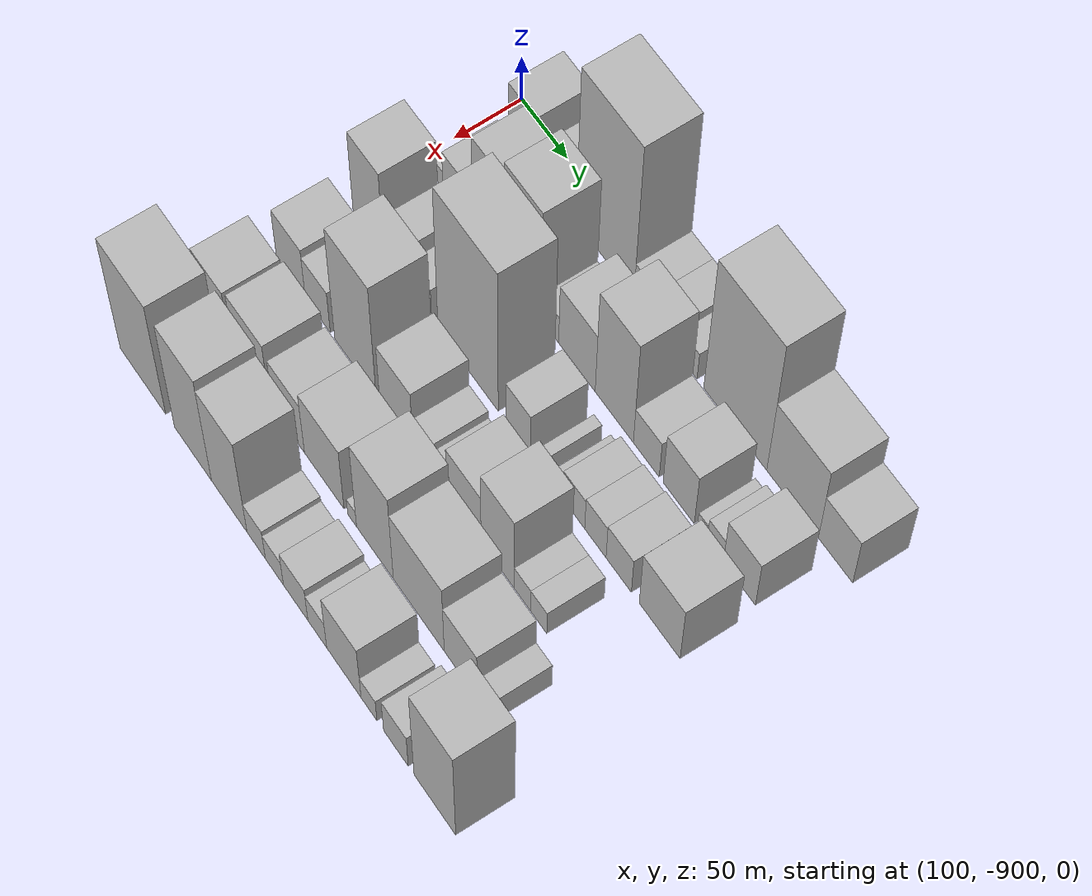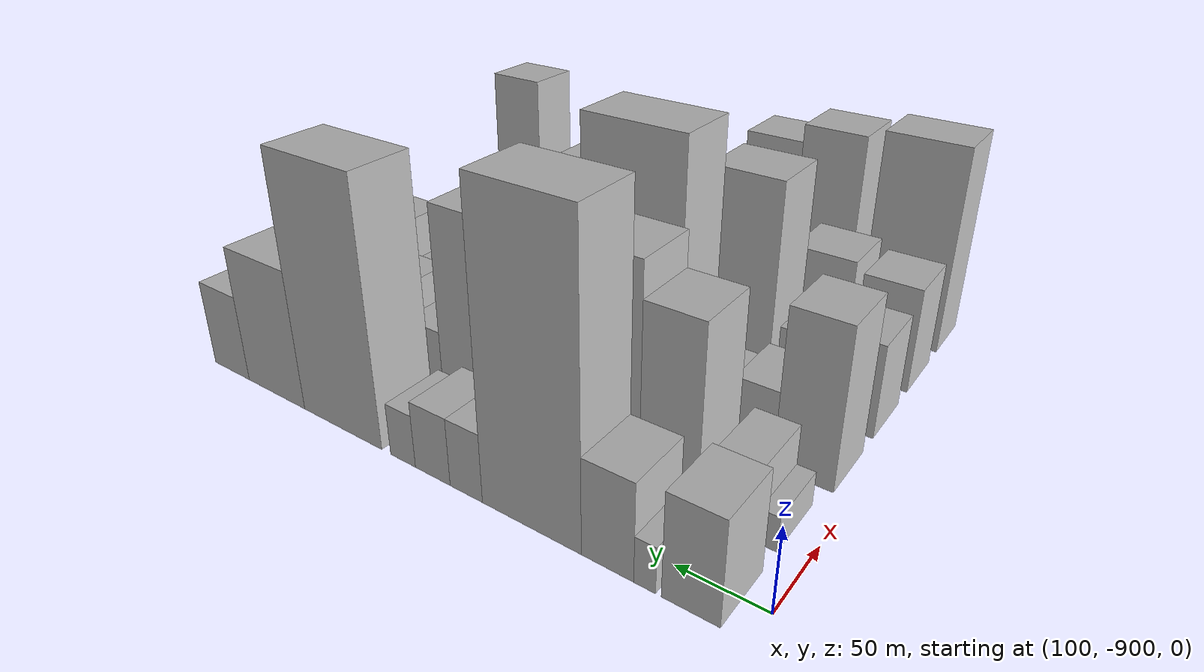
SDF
<sdf version="1.6">
 <world name="default">
  <model name="building_1">
   <static>1</static>
   <pose>100.0000 -869.9984 0 0.000000 0.000000 0.000000</pose>
   <link name="link">
    <pose>0 0 30.00 0 0 0</pose>
    <collision name="collision"><geometry><box><size>40.0000 30.0033 60.0000</size></box></geometry></collision>
    <visual name="visual">
     <cast_shadows>0</cast_shadows>
     <geometry><box><size>40.0000 30.0033 60.0000</size></box></geometry>
     <material>
      <script>
       <uri>model://HANNAS_wall/materials/scripts</uri>
       <uri>model://HANNAS_wall/materials/textures</uri>
       <name>vrc/HANNAS_wall</name>
      </script>
     </material>
    </visual>
   </link>
  </model>
  <model name="building_2">
   <static>1</static>
   <pose>100.0000 -846.1304 0 0.000000 0.000000 0.000000</pose>
   <link name="link">
    <pose>0 0 13.50 0 0 0</pose>
    <collision name="collision"><geometry><box><size>40.0000 11.7326 27.0000</size></box></geometry></collision>
    <visual name="visual">
     <cast_shadows>0</cast_shadows>
     <geometry><box><size>40.0000 11.7326 27.0000</size></box></geometry>
     <material>
      <script>
       <uri>model://HANNAS_wall/materials/scripts</uri>
       <uri>model://HANNAS_wall/materials/textures</uri>
       <name>vrc/HANNAS_wall</name>
      </script>
     </material>
    </visual>
   </link>
  </model>
  <model name="building_3">
   <static>1</static>
   <pose>100.0000 -825.5178 0 0.000000 0.000000 0.000000</pose>
   <link name="link">
    <pose>0 0 28.50 0 0 0</pose>
    <collision name="collision"><geometry><box><size>40.0000 29.4925 57.0000</size></box></geometry></collision>
    <visual name="visual">
     <cast_shadows>0</cast_shadows>
     <geometry><box><size>40.0000 29.4925 57.0000</size></box></geometry>
     <material>
      <script>
       <uri>model://HANNAS_wall/materials/scripts</uri>
       <uri>model://HANNAS_wall/materials/textures</uri>
       <name>vrc/HANNAS_wall</name>
      </script>
     </material>
    </visual>
   </link>
  </model>
  <model name="building_4">
   <static>1</static>
   <pose>100.0000 -779.7307 0 0.000000 0.000000 0.000000</pose>
   <link name="link">
    <pose>0 0 90.00 0 0 0</pose>
    <collision name="collision"><geometry><box><size>40.0000 62.0817 180.0000</size></box></geometry></collision>
    <visual name="visual">
     <cast_shadows>0</cast_shadows>
     <geometry><box><size>40.0000 62.0817 180.0000</size></box></geometry>
     <material>
      <script>
       <uri>model://HANNAS_wall/materials/scripts</uri>
       <uri>model://HANNAS_wall/materials/textures</uri>
       <name>vrc/HANNAS_wall</name>
      </script>
     </material>
    </visual>
   </link>
  </model>
  <model name="building_5">
   <static>1</static>
   <pose>100.0000 -737.5827 0 0.000000 0.000000 0.000000</pose>
   <link name="link">
    <pose>0 0 21.00 0 0 0</pose>
    <collision name="collision"><geometry><box><size>40.0000 22.2144 42.0000</size></box></geometry></collision>
    <visual name="visual">
     <cast_shadows>0</cast_shadows>
     <geometry><box><size>40.0000 22.2144 42.0000</size></box></geometry>
     <material>
      <script>
       <uri>model://HANNAS_wall/materials/scripts</uri>
       <uri>model://HANNAS_wall/materials/textures</uri>
       <name>vrc/HANNAS_wall</name>
      </script>
     </material>
    </visual>
   </link>
  </model>
  <model name="building_6">
   <static>1</static>
   <pose>100.0000 -713.8823 0 0.000000 0.000000 0.000000</pose>
   <link name="link">
    <pose>0 0 21.00 0 0 0</pose>
    <collision name="collision"><geometry><box><size>40.0000 25.1864 42.0000</size></box></geometry></collision>
    <visual name="visual">
     <cast_shadows>0</cast_shadows>
     <geometry><box><size>40.0000 25.1864 42.0000</size></box></geometry>
     <material>
      <script>
       <uri>model://HANNAS_wall/materials/scripts</uri>
       <uri>model://HANNAS_wall/materials/textures</uri>
       <name>vrc/HANNAS_wall</name>
      </script>
     </material>
    </visual>
   </link>
  </model>
  <model name="building_7">
   <static>1</static>
   <pose>100.0000 -691.9123 0 0.000000 0.000000 0.000000</pose>
   <link name="link">
    <pose>0 0 16.50 0 0 0</pose>
    <collision name="collision"><geometry><box><size>40.0000 18.7535 33.0000</size></box></geometry></collision>
    <visual name="visual">
     <cast_shadows>0</cast_shadows>
     <geometry><box><size>40.0000 18.7535 33.0000</size></box></geometry>
     <material>
      <script>
       <uri>model://HANNAS_wall/materials/scripts</uri>
       <uri>model://HANNAS_wall/materials/textures</uri>
       <name>vrc/HANNAS_wall</name>
      </script>
     </material>
    </visual>
   </link>
  </model>
  <model name="building_8">
   <static>1</static>
   <pose>100.0000 -643.2716 0 0.000000 0.000000 0.000000</pose>
   <link name="link">
    <pose>0 0 81.00 0 0 0</pose>
    <collision name="collision"><geometry><box><size>40.0000 64.5278 162.0000</size></box></geometry></collision>
    <visual name="visual">
     <cast_shadows>0</cast_shadows>
     <geometry><box><size>40.0000 64.5278 162.0000</size></box></geometry>
     <material>
      <script>
       <uri>model://HANNAS_wall/materials/scripts</uri>
       <uri>model://HANNAS_wall/materials/textures</uri>
       <name>vrc/HANNAS_wall</name>
      </script>
     </material>
    </visual>
   </link>
  </model>
  <model name="building_9">
   <static>1</static>
   <pose>100.0000 -585.0858 0 0.000000 0.000000 0.000000</pose>
   <link name="link">
    <pose>0 0 45.00 0 0 0</pose>
    <collision name="collision"><geometry><box><size>40.0000 51.8437 90.0000</size></box></geometry></collision>
    <visual name="visual">
     <cast_shadows>0</cast_shadows>
     <geometry><box><size>40.0000 51.8437 90.0000</size></box></geometry>
     <material>
      <script>
       <uri>model://HANNAS_wall/materials/scripts</uri>
       <uri>model://HANNAS_wall/materials/textures</uri>
       <name>vrc/HANNAS_wall</name>
      </script>
     </material>
    </visual>
   </link>
  </model>
  <model name="building_10">
   <static>1</static>
   <pose>100.0000 -542.1855 0 0.000000 0.000000 0.000000</pose>
   <link name="link">
    <pose>0 0 28.50 0 0 0</pose>
    <collision name="collision"><geometry><box><size>40.0000 33.9569 57.0000</size></box></geometry></collision>
    <visual name="visual">
     <cast_shadows>0</cast_shadows>
     <geometry><box><size>40.0000 33.9569 57.0000</size></box></geometry>
     <material>
      <script>
       <uri>model://HANNAS_wall/materials/scripts</uri>
       <uri>model://HANNAS_wall/materials/textures</uri>
       <name>vrc/HANNAS_wall</name>
      </script>
     </material>
    </visual>
   </link>
  </model>
  <model name="building_50">
   <static>1</static>
   <pose>155.0000 -879.7726 0 0.000000 0.000000 0.000000</pose>
   <link name="link">
    <pose>0 0 10.50 0 0 0</pose>
    <collision name="collision"><geometry><box><size>40.0000 10.4548 21.0000</size></box></geometry></collision>
    <visual name="visual">
     <cast_shadows>0</cast_shadows>
     <geometry><box><size>40.0000 10.4548 21.0000</size></box></geometry>
     <material>
      <script>
       <uri>model://HANNAS_wall/materials/scripts</uri>
       <uri>model://HANNAS_wall/materials/textures</uri>
       <name>vrc/HANNAS_wall</name>
      </script>
     </material>
    </visual>
   </link>
  </model>
  <model name="building_51">
   <static>1</static>
   <pose>155.0000 -861.9768 0 0.000000 0.000000 0.000000</pose>
   <link name="link">
    <pose>0 0 22.50 0 0 0</pose>
    <collision name="collision"><geometry><box><size>40.0000 25.1369 45.0000</size></box></geometry></collision>
    <visual name="visual">
     <cast_shadows>0</cast_shadows>
     <geometry><box><size>40.0000 25.1369 45.0000</size></box></geometry>
     <material>
      <script>
       <uri>model://HANNAS_wall/materials/scripts</uri>
       <uri>model://HANNAS_wall/materials/textures</uri>
       <name>vrc/HANNAS_wall</name>
      </script>
     </material>
    </visual>
   </link>
  </model>
  <model name="building_52">
   <static>1</static>
   <pose>155.0000 -824.1083 0 0.000000 0.000000 0.000000</pose>
   <link name="link">
    <pose>0 0 55.50 0 0 0</pose>
    <collision name="collision"><geometry><box><size>40.0000 34.6000 111.0000</size></box></geometry></collision>
    <visual name="visual">
     <cast_shadows>0</cast_shadows>
     <geometry><box><size>40.0000 34.6000 111.0000</size></box></geometry>
     <material>
      <script>
       <uri>model://HANNAS_wall/materials/scripts</uri>
       <uri>model://HANNAS_wall/materials/textures</uri>
       <name>vrc/HANNAS_wall</name>
      </script>
     </material>
    </visual>
   </link>
  </model>
  <model name="building_53">
   <static>1</static>
   <pose>155.0000 -786.7428 0 0.000000 0.000000 0.000000</pose>
   <link name="link">
    <pose>0 0 66.00 0 0 0</pose>
    <collision name="collision"><geometry><box><size>40.0000 40.1310 132.0000</size></box></geometry></collision>
    <visual name="visual">
     <cast_shadows>0</cast_shadows>
     <geometry><box><size>40.0000 40.1310 132.0000</size></box></geometry>
     <material>
      <script>
       <uri>model://HANNAS_wall/materials/scripts</uri>
       <uri>model://HANNAS_wall/materials/textures</uri>
       <name>vrc/HANNAS_wall</name>
      </script>
     </material>
    </visual>
   </link>
  </model>
  <model name="building_54">
   <static>1</static>
   <pose>155.0000 -757.3948 0 0.000000 0.000000 0.000000</pose>
   <link name="link">
    <pose>0 0 16.50 0 0 0</pose>
    <collision name="collision"><geometry><box><size>40.0000 18.5649 33.0000</size></box></geometry></collision>
    <visual name="visual">
     <cast_shadows>0</cast_shadows>
     <geometry><box><size>40.0000 18.5649 33.0000</size></box></geometry>
     <material>
      <script>
       <uri>model://HANNAS_wall/materials/scripts</uri>
       <uri>model://HANNAS_wall/materials/textures</uri>
       <name>vrc/HANNAS_wall</name>
      </script>
     </material>
    </visual>
   </link>
  </model>
  <model name="building_55">
   <static>1</static>
   <pose>155.0000 -728.7192 0 0.000000 0.000000 0.000000</pose>
   <link name="link">
    <pose>0 0 36.00 0 0 0</pose>
    <collision name="collision"><geometry><box><size>40.0000 38.7863 72.0000</size></box></geometry></collision>
    <visual name="visual">
     <cast_shadows>0</cast_shadows>
     <geometry><box><size>40.0000 38.7863 72.0000</size></box></geometry>
     <material>
      <script>
       <uri>model://HANNAS_wall/materials/scripts</uri>
       <uri>model://HANNAS_wall/materials/textures</uri>
       <name>vrc/HANNAS_wall</name>
      </script>
     </material>
    </visual>
   </link>
  </model>
  <model name="building_56">
   <static>1</static>
   <pose>155.0000 -689.2966 0 0.000000 0.000000 0.000000</pose>
   <link name="link">
    <pose>0 0 63.00 0 0 0</pose>
    <collision name="collision"><geometry><box><size>40.0000 40.0589 126.0000</size></box></geometry></collision>
    <visual name="visual">
     <cast_shadows>0</cast_shadows>
     <geometry><box><size>40.0000 40.0589 126.0000</size></box></geometry>
     <material>
      <script>
       <uri>model://HANNAS_wall/materials/scripts</uri>
       <uri>model://HANNAS_wall/materials/textures</uri>
       <name>vrc/HANNAS_wall</name>
      </script>
     </material>
    </visual>
   </link>
  </model>
  <model name="building_57">
   <static>1</static>
   <pose>155.0000 -655.8796 0 0.000000 0.000000 0.000000</pose>
   <link name="link">
    <pose>0 0 22.50 0 0 0</pose>
    <collision name="collision"><geometry><box><size>40.0000 26.7751 45.0000</size></box></geometry></collision>
    <visual name="visual">
     <cast_shadows>0</cast_shadows>
     <geometry><box><size>40.0000 26.7751 45.0000</size></box></geometry>
     <material>
      <script>
       <uri>model://HANNAS_wall/materials/scripts</uri>
       <uri>model://HANNAS_wall/materials/textures</uri>
       <name>vrc/HANNAS_wall</name>
      </script>
     </material>
    </visual>
   </link>
  </model>
  <model name="building_58">
   <static>1</static>
   <pose>155.0000 -622.5172 0 0.000000 0.000000 0.000000</pose>
   <link name="link">
    <pose>0 0 31.50 0 0 0</pose>
    <collision name="collision"><geometry><box><size>40.0000 31.9498 63.0000</size></box></geometry></collision>
    <visual name="visual">
     <cast_shadows>0</cast_shadows>
     <geometry><box><size>40.0000 31.9498 63.0000</size></box></geometry>
     <material>
      <script>
       <uri>model://HANNAS_wall/materials/scripts</uri>
       <uri>model://HANNAS_wall/materials/textures</uri>
       <name>vrc/HANNAS_wall</name>
      </script>
     </material>
    </visual>
   </link>
  </model>
  <model name="building_59">
   <static>1</static>
   <pose>155.0000 -598.5974 0 0.000000 0.000000 0.000000</pose>
   <link name="link">
    <pose>0 0 10.50 0 0 0</pose>
    <collision name="collision"><geometry><box><size>40.0000 9.8899 21.0000</size></box></geometry></collision>
    <visual name="visual">
     <cast_shadows>0</cast_shadows>
     <geometry><box><size>40.0000 9.8899 21.0000</size></box></geometry>
     <material>
      <script>
       <uri>model://HANNAS_wall/materials/scripts</uri>
       <uri>model://HANNAS_wall/materials/textures</uri>
       <name>vrc/HANNAS_wall</name>
      </script>
     </material>
    </visual>
   </link>
  </model>
  <model name="building_60">
   <static>1</static>
   <pose>155.0000 -585.4388 0 0.000000 0.000000 0.000000</pose>
   <link name="link">
    <pose>0 0 15.00 0 0 0</pose>
    <collision name="collision"><geometry><box><size>40.0000 16.4272 30.0000</size></box></geometry></collision>
    <visual name="visual">
     <cast_shadows>0</cast_shadows>
     <geometry><box><size>40.0000 16.4272 30.0000</size></box></geometry>
     <material>
      <script>
       <uri>model://HANNAS_wall/materials/scripts</uri>
       <uri>model://HANNAS_wall/materials/textures</uri>
       <name>vrc/HANNAS_wall</name>
      </script>
     </material>
    </visual>
   </link>
  </model>
  <model name="building_61">
   <static>1</static>
   <pose>155.0000 -561.0946 0 0.000000 0.000000 0.000000</pose>
   <link name="link">
    <pose>0 0 28.50 0 0 0</pose>
    <collision name="collision"><geometry><box><size>40.0000 32.2613 57.0000</size></box></geometry></collision>
    <visual name="visual">
     <cast_shadows>0</cast_shadows>
     <geometry><box><size>40.0000 32.2613 57.0000</size></box></geometry>
     <material>
      <script>
       <uri>model://HANNAS_wall/materials/scripts</uri>
       <uri>model://HANNAS_wall/materials/textures</uri>
       <name>vrc/HANNAS_wall</name>
      </script>
     </material>
    </visual>
   </link>
  </model>
  <model name="building_101">
   <static>1</static>
   <pose>210.0000 -872.9363 0 0.000000 0.000000 0.000000</pose>
   <link name="link">
    <pose>0 0 49.50 0 0 0</pose>
    <collision name="collision"><geometry><box><size>40.0000 34.1274 99.0000</size></box></geometry></collision>
    <visual name="visual">
     <cast_shadows>0</cast_shadows>
     <geometry><box><size>40.0000 34.1274 99.0000</size></box></geometry>
     <material>
      <script>
       <uri>model://HANNAS_wall/materials/scripts</uri>
       <uri>model://HANNAS_wall/materials/textures</uri>
       <name>vrc/HANNAS_wall</name>
      </script>
     </material>
    </visual>
   </link>
  </model>
  <model name="building_102">
   <static>1</static>
   <pose>210.0000 -842.9344 0 0.000000 0.000000 0.000000</pose>
   <link name="link">
    <pose>0 0 24.00 0 0 0</pose>
    <collision name="collision"><geometry><box><size>40.0000 25.8764 48.0000</size></box></geometry></collision>
    <visual name="visual">
     <cast_shadows>0</cast_shadows>
     <geometry><box><size>40.0000 25.8764 48.0000</size></box></geometry>
     <material>
      <script>
       <uri>model://HANNAS_wall/materials/scripts</uri>
       <uri>model://HANNAS_wall/materials/textures</uri>
       <name>vrc/HANNAS_wall</name>
      </script>
     </material>
    </visual>
   </link>
  </model>
  <model name="building_103">
   <static>1</static>
   <pose>210.0000 -814.3530 0 0.000000 0.000000 0.000000</pose>
   <link name="link">
    <pose>0 0 19.50 0 0 0</pose>
    <collision name="collision"><geometry><box><size>40.0000 23.2865 39.0000</size></box></geometry></collision>
    <visual name="visual">
     <cast_shadows>0</cast_shadows>
     <geometry><box><size>40.0000 23.2865 39.0000</size></box></geometry>
     <material>
      <script>
       <uri>model://HANNAS_wall/materials/scripts</uri>
       <uri>model://HANNAS_wall/materials/textures</uri>
       <name>vrc/HANNAS_wall</name>
      </script>
     </material>
    </visual>
   </link>
  </model>
  <model name="building_104">
   <static>1</static>
   <pose>210.0000 -763.0759 0 0.000000 0.000000 0.000000</pose>
   <link name="link">
    <pose>0 0 87.00 0 0 0</pose>
    <collision name="collision"><geometry><box><size>40.0000 65.2676 174.0000</size></box></geometry></collision>
    <visual name="visual">
     <cast_shadows>0</cast_shadows>
     <geometry><box><size>40.0000 65.2676 174.0000</size></box></geometry>
     <material>
      <script>
       <uri>model://HANNAS_wall/materials/scripts</uri>
       <uri>model://HANNAS_wall/materials/textures</uri>
       <name>vrc/HANNAS_wall</name>
      </script>
     </material>
    </visual>
   </link>
  </model>
  <model name="building_105">
   <static>1</static>
   <pose>210.0000 -709.3429 0 0.000000 0.000000 0.000000</pose>
   <link name="link">
    <pose>0 0 25.50 0 0 0</pose>
    <collision name="collision"><geometry><box><size>40.0000 26.1984 51.0000</size></box></geometry></collision>
    <visual name="visual">
     <cast_shadows>0</cast_shadows>
     <geometry><box><size>40.0000 26.1984 51.0000</size></box></geometry>
     <material>
      <script>
       <uri>model://HANNAS_wall/materials/scripts</uri>
       <uri>model://HANNAS_wall/materials/textures</uri>
       <name>vrc/HANNAS_wall</name>
      </script>
     </material>
    </visual>
   </link>
  </model>
  <model name="building_106">
   <static>1</static>
   <pose>210.0000 -685.0281 0 0.000000 0.000000 0.000000</pose>
   <link name="link">
    <pose>0 0 10.50 0 0 0</pose>
    <collision name="collision"><geometry><box><size>40.0000 8.4311 21.0000</size></box></geometry></collision>
    <visual name="visual">
     <cast_shadows>0</cast_shadows>
     <geometry><box><size>40.0000 8.4311 21.0000</size></box></geometry>
     <material>
      <script>
       <uri>model://HANNAS_wall/materials/scripts</uri>
       <uri>model://HANNAS_wall/materials/textures</uri>
       <name>vrc/HANNAS_wall</name>
      </script>
     </material>
    </visual>
   </link>
  </model>
  <model name="building_107">
   <static>1</static>
   <pose>210.0000 -666.9719 0 0.000000 0.000000 0.000000</pose>
   <link name="link">
    <pose>0 0 12.00 0 0 0</pose>
    <collision name="collision"><geometry><box><size>40.0000 9.6814 24.0000</size></box></geometry></collision>
    <visual name="visual">
     <cast_shadows>0</cast_shadows>
     <geometry><box><size>40.0000 9.6814 24.0000</size></box></geometry>
     <material>
      <script>
       <uri>model://HANNAS_wall/materials/scripts</uri>
       <uri>model://HANNAS_wall/materials/textures</uri>
       <name>vrc/HANNAS_wall</name>
      </script>
     </material>
    </visual>
   </link>
  </model>
  <model name="building_108">
   <static>1</static>
   <pose>210.0000 -650.6922 0 0.000000 0.000000 0.000000</pose>
   <link name="link">
    <pose>0 0 19.50 0 0 0</pose>
    <collision name="collision"><geometry><box><size>40.0000 22.8780 39.0000</size></box></geometry></collision>
    <visual name="visual">
     <cast_shadows>0</cast_shadows>
     <geometry><box><size>40.0000 22.8780 39.0000</size></box></geometry>
     <material>
      <script>
       <uri>model://HANNAS_wall/materials/scripts</uri>
       <uri>model://HANNAS_wall/materials/textures</uri>
       <name>vrc/HANNAS_wall</name>
      </script>
     </material>
    </visual>
   </link>
  </model>
  <model name="building_109">
   <static>1</static>
   <pose>210.0000 -628.2325 0 0.000000 0.000000 0.000000</pose>
   <link name="link">
    <pose>0 0 21.00 0 0 0</pose>
    <collision name="collision"><geometry><box><size>40.0000 22.0414 42.0000</size></box></geometry></collision>
    <visual name="visual">
     <cast_shadows>0</cast_shadows>
     <geometry><box><size>40.0000 22.0414 42.0000</size></box></geometry>
     <material>
      <script>
       <uri>model://HANNAS_wall/materials/scripts</uri>
       <uri>model://HANNAS_wall/materials/textures</uri>
       <name>vrc/HANNAS_wall</name>
      </script>
     </material>
    </visual>
   </link>
  </model>
  <model name="building_110">
   <static>1</static>
   <pose>210.0000 -604.2411 0 0.000000 0.000000 0.000000</pose>
   <link name="link">
    <pose>0 0 22.50 0 0 0</pose>
    <collision name="collision"><geometry><box><size>40.0000 25.9413 45.0000</size></box></geometry></collision>
    <visual name="visual">
     <cast_shadows>0</cast_shadows>
     <geometry><box><size>40.0000 25.9413 45.0000</size></box></geometry>
     <material>
      <script>
       <uri>model://HANNAS_wall/materials/scripts</uri>
       <uri>model://HANNAS_wall/materials/textures</uri>
       <name>vrc/HANNAS_wall</name>
      </script>
     </material>
    </visual>
   </link>
  </model>
  <model name="building_111">
   <static>1</static>
   <pose>210.0000 -562.5917 0 0.000000 0.000000 0.000000</pose>
   <link name="link">
    <pose>0 0 34.50 0 0 0</pose>
    <collision name="collision"><geometry><box><size>40.0000 41.3576 69.0000</size></box></geometry></collision>
    <visual name="visual">
     <cast_shadows>0</cast_shadows>
     <geometry><box><size>40.0000 41.3576 69.0000</size></box></geometry>
     <material>
      <script>
       <uri>model://HANNAS_wall/materials/scripts</uri>
       <uri>model://HANNAS_wall/materials/textures</uri>
       <name>vrc/HANNAS_wall</name>
      </script>
     </material>
    </visual>
   </link>
  </model>
  <model name="building_157">
   <static>1</static>
   <pose>265.0000 -873.7267 0 0.000000 0.000000 0.000000</pose>
   <link name="link">
    <pose>0 0 30.00 0 0 0</pose>
    <collision name="collision"><geometry><box><size>40.0000 32.5466 60.0000</size></box></geometry></collision>
    <visual name="visual">
     <cast_shadows>0</cast_shadows>
     <geometry><box><size>40.0000 32.5466 60.0000</size></box></geometry>
     <material>
      <script>
       <uri>model://HANNAS_wall/materials/scripts</uri>
       <uri>model://HANNAS_wall/materials/textures</uri>
       <name>vrc/HANNAS_wall</name>
      </script>
     </material>
    </visual>
   </link>
  </model>
  <model name="building_158">
   <static>1</static>
   <pose>265.0000 -843.3931 0 0.000000 0.000000 0.000000</pose>
   <link name="link">
    <pose>0 0 25.50 0 0 0</pose>
    <collision name="collision"><geometry><box><size>40.0000 28.1205 51.0000</size></box></geometry></collision>
    <visual name="visual">
     <cast_shadows>0</cast_shadows>
     <geometry><box><size>40.0000 28.1205 51.0000</size></box></geometry>
     <material>
      <script>
       <uri>model://HANNAS_wall/materials/scripts</uri>
       <uri>model://HANNAS_wall/materials/textures</uri>
       <name>vrc/HANNAS_wall</name>
      </script>
     </material>
    </visual>
   </link>
  </model>
  <model name="building_159">
   <static>1</static>
   <pose>265.0000 -801.4822 0 0.000000 0.000000 0.000000</pose>
   <link name="link">
    <pose>0 0 69.00 0 0 0</pose>
    <collision name="collision"><geometry><box><size>40.0000 45.7014 138.0000</size></box></geometry></collision>
    <visual name="visual">
     <cast_shadows>0</cast_shadows>
     <geometry><box><size>40.0000 45.7014 138.0000</size></box></geometry>
     <material>
      <script>
       <uri>model://HANNAS_wall/materials/scripts</uri>
       <uri>model://HANNAS_wall/materials/textures</uri>
       <name>vrc/HANNAS_wall</name>
      </script>
     </material>
    </visual>
   </link>
  </model>
  <model name="building_160">
   <static>1</static>
   <pose>265.0000 -756.4343 0 0.000000 0.000000 0.000000</pose>
   <link name="link">
    <pose>0 0 36.00 0 0 0</pose>
    <collision name="collision"><geometry><box><size>40.0000 36.3943 72.0000</size></box></geometry></collision>
    <visual name="visual">
     <cast_shadows>0</cast_shadows>
     <geometry><box><size>40.0000 36.3943 72.0000</size></box></geometry>
     <material>
      <script>
       <uri>model://HANNAS_wall/materials/scripts</uri>
       <uri>model://HANNAS_wall/materials/textures</uri>
       <name>vrc/HANNAS_wall</name>
      </script>
     </material>
    </visual>
   </link>
  </model>
  <model name="building_161">
   <static>1</static>
   <pose>265.0000 -728.0617 0 0.000000 0.000000 0.000000</pose>
   <link name="link">
    <pose>0 0 19.50 0 0 0</pose>
    <collision name="collision"><geometry><box><size>40.0000 20.3510 39.0000</size></box></geometry></collision>
    <visual name="visual">
     <cast_shadows>0</cast_shadows>
     <geometry><box><size>40.0000 20.3510 39.0000</size></box></geometry>
     <material>
      <script>
       <uri>model://HANNAS_wall/materials/scripts</uri>
       <uri>model://HANNAS_wall/materials/textures</uri>
       <name>vrc/HANNAS_wall</name>
      </script>
     </material>
    </visual>
   </link>
  </model>
  <model name="building_162">
   <static>1</static>
   <pose>265.0000 -709.8071 0 0.000000 0.000000 0.000000</pose>
   <link name="link">
    <pose>0 0 15.00 0 0 0</pose>
    <collision name="collision"><geometry><box><size>40.0000 16.1580 30.0000</size></box></geometry></collision>
    <visual name="visual">
     <cast_shadows>0</cast_shadows>
     <geometry><box><size>40.0000 16.1580 30.0000</size></box></geometry>
     <material>
      <script>
       <uri>model://HANNAS_wall/materials/scripts</uri>
       <uri>model://HANNAS_wall/materials/textures</uri>
       <name>vrc/HANNAS_wall</name>
      </script>
     </material>
    </visual>
   </link>
  </model>
  <model name="building_163">
   <static>1</static>
   <pose>265.0000 -683.5834 0 0.000000 0.000000 0.000000</pose>
   <link name="link">
    <pose>0 0 31.50 0 0 0</pose>
    <collision name="collision"><geometry><box><size>40.0000 36.2893 63.0000</size></box></geometry></collision>
    <visual name="visual">
     <cast_shadows>0</cast_shadows>
     <geometry><box><size>40.0000 36.2893 63.0000</size></box></geometry>
     <material>
      <script>
       <uri>model://HANNAS_wall/materials/scripts</uri>
       <uri>model://HANNAS_wall/materials/textures</uri>
       <name>vrc/HANNAS_wall</name>
      </script>
     </material>
    </visual>
   </link>
  </model>
  <model name="building_164">
   <static>1</static>
   <pose>265.0000 -648.0831 0 0.000000 0.000000 0.000000</pose>
   <link name="link">
    <pose>0 0 46.50 0 0 0</pose>
    <collision name="collision"><geometry><box><size>40.0000 34.7114 93.0000</size></box></geometry></collision>
    <visual name="visual">
     <cast_shadows>0</cast_shadows>
     <geometry><box><size>40.0000 34.7114 93.0000</size></box></geometry>
     <material>
      <script>
       <uri>model://HANNAS_wall/materials/scripts</uri>
       <uri>model://HANNAS_wall/materials/textures</uri>
       <name>vrc/HANNAS_wall</name>
      </script>
     </material>
    </visual>
   </link>
  </model>
  <model name="building_165">
   <static>1</static>
   <pose>265.0000 -622.2636 0 0.000000 0.000000 0.000000</pose>
   <link name="link">
    <pose>0 0 15.00 0 0 0</pose>
    <collision name="collision"><geometry><box><size>40.0000 16.9275 30.0000</size></box></geometry></collision>
    <visual name="visual">
     <cast_shadows>0</cast_shadows>
     <geometry><box><size>40.0000 16.9275 30.0000</size></box></geometry>
     <material>
      <script>
       <uri>model://HANNAS_wall/materials/scripts</uri>
       <uri>model://HANNAS_wall/materials/textures</uri>
       <name>vrc/HANNAS_wall</name>
      </script>
     </material>
    </visual>
   </link>
  </model>
  <model name="building_166">
   <static>1</static>
   <pose>265.0000 -605.4280 0 0.000000 0.000000 0.000000</pose>
   <link name="link">
    <pose>0 0 15.00 0 0 0</pose>
    <collision name="collision"><geometry><box><size>40.0000 16.7436 30.0000</size></box></geometry></collision>
    <visual name="visual">
     <cast_shadows>0</cast_shadows>
     <geometry><box><size>40.0000 16.7436 30.0000</size></box></geometry>
     <material>
      <script>
       <uri>model://HANNAS_wall/materials/scripts</uri>
       <uri>model://HANNAS_wall/materials/textures</uri>
       <name>vrc/HANNAS_wall</name>
      </script>
     </material>
    </visual>
   </link>
  </model>
  <model name="building_209">
   <static>1</static>
   <pose>320.0000 -872.3065 0 0.000000 0.000000 0.000000</pose>
   <link name="link">
    <pose>0 0 34.50 0 0 0</pose>
    <collision name="collision"><geometry><box><size>40.0000 35.3871 69.0000</size></box></geometry></collision>
    <visual name="visual">
     <cast_shadows>0</cast_shadows>
     <geometry><box><size>40.0000 35.3871 69.0000</size></box></geometry>
     <material>
      <script>
       <uri>model://HANNAS_wall/materials/scripts</uri>
       <uri>model://HANNAS_wall/materials/textures</uri>
       <name>vrc/HANNAS_wall</name>
      </script>
     </material>
    </visual>
   </link>
  </model>
  <model name="building_210">
   <static>1</static>
   <pose>320.0000 -829.6701 0 0.000000 0.000000 0.000000</pose>
   <link name="link">
    <pose>0 0 37.50 0 0 0</pose>
    <collision name="collision"><geometry><box><size>40.0000 39.8857 75.0000</size></box></geometry></collision>
    <visual name="visual">
     <cast_shadows>0</cast_shadows>
     <geometry><box><size>40.0000 39.8857 75.0000</size></box></geometry>
     <material>
      <script>
       <uri>model://HANNAS_wall/materials/scripts</uri>
       <uri>model://HANNAS_wall/materials/textures</uri>
       <name>vrc/HANNAS_wall</name>
      </script>
     </material>
    </visual>
   </link>
  </model>
  <model name="building_211">
   <static>1</static>
   <pose>320.0000 -788.2874 0 0.000000 0.000000 0.000000</pose>
   <link name="link">
    <pose>0 0 31.50 0 0 0</pose>
    <collision name="collision"><geometry><box><size>40.0000 34.8797 63.0000</size></box></geometry></collision>
    <visual name="visual">
     <cast_shadows>0</cast_shadows>
     <geometry><box><size>40.0000 34.8797 63.0000</size></box></geometry>
     <material>
      <script>
       <uri>model://HANNAS_wall/materials/scripts</uri>
       <uri>model://HANNAS_wall/materials/textures</uri>
       <name>vrc/HANNAS_wall</name>
      </script>
     </material>
    </visual>
   </link>
  </model>
  <model name="building_212">
   <static>1</static>
   <pose>320.0000 -749.2037 0 0.000000 0.000000 0.000000</pose>
   <link name="link">
    <pose>0 0 39.00 0 0 0</pose>
    <collision name="collision"><geometry><box><size>40.0000 43.2876 78.0000</size></box></geometry></collision>
    <visual name="visual">
     <cast_shadows>0</cast_shadows>
     <geometry><box><size>40.0000 43.2876 78.0000</size></box></geometry>
     <material>
      <script>
       <uri>model://HANNAS_wall/materials/scripts</uri>
       <uri>model://HANNAS_wall/materials/textures</uri>
       <name>vrc/HANNAS_wall</name>
      </script>
     </material>
    </visual>
   </link>
  </model>
  <model name="building_213">
   <static>1</static>
   <pose>320.0000 -718.7338 0 0.000000 0.000000 0.000000</pose>
   <link name="link">
    <pose>0 0 10.50 0 0 0</pose>
    <collision name="collision"><geometry><box><size>40.0000 9.6522 21.0000</size></box></geometry></collision>
    <visual name="visual">
     <cast_shadows>0</cast_shadows>
     <geometry><box><size>40.0000 9.6522 21.0000</size></box></geometry>
     <material>
      <script>
       <uri>model://HANNAS_wall/materials/scripts</uri>
       <uri>model://HANNAS_wall/materials/textures</uri>
       <name>vrc/HANNAS_wall</name>
      </script>
     </material>
    </visual>
   </link>
  </model>
  <model name="building_214">
   <static>1</static>
   <pose>320.0000 -694.1506 0 0.000000 0.000000 0.000000</pose>
   <link name="link">
    <pose>0 0 55.50 0 0 0</pose>
    <collision name="collision"><geometry><box><size>40.0000 39.5142 111.0000</size></box></geometry></collision>
    <visual name="visual">
     <cast_shadows>0</cast_shadows>
     <geometry><box><size>40.0000 39.5142 111.0000</size></box></geometry>
     <material>
      <script>
       <uri>model://HANNAS_wall/materials/scripts</uri>
       <uri>model://HANNAS_wall/materials/textures</uri>
       <name>vrc/HANNAS_wall</name>
      </script>
     </material>
    </visual>
   </link>
  </model>
  <model name="building_215">
   <static>1</static>
   <pose>320.0000 -647.4653 0 0.000000 0.000000 0.000000</pose>
   <link name="link">
    <pose>0 0 45.00 0 0 0</pose>
    <collision name="collision"><geometry><box><size>40.0000 53.8564 90.0000</size></box></geometry></collision>
    <visual name="visual">
     <cast_shadows>0</cast_shadows>
     <geometry><box><size>40.0000 53.8564 90.0000</size></box></geometry>
     <material>
      <script>
       <uri>model://HANNAS_wall/materials/scripts</uri>
       <uri>model://HANNAS_wall/materials/textures</uri>
       <name>vrc/HANNAS_wall</name>
      </script>
     </material>
    </visual>
   </link>
  </model>
  <model name="building_216">
   <static>1</static>
   <pose>320.0000 -603.1936 0 0.000000 0.000000 0.000000</pose>
   <link name="link">
    <pose>0 0 31.50 0 0 0</pose>
    <collision name="collision"><geometry><box><size>40.0000 34.6871 63.0000</size></box></geometry></collision>
    <visual name="visual">
     <cast_shadows>0</cast_shadows>
     <geometry><box><size>40.0000 34.6871 63.0000</size></box></geometry>
     <material>
      <script>
       <uri>model://HANNAS_wall/materials/scripts</uri>
       <uri>model://HANNAS_wall/materials/textures</uri>
       <name>vrc/HANNAS_wall</name>
      </script>
     </material>
    </visual>
   </link>
  </model>
  <model name="building_217">
   <static>1</static>
   <pose>320.0000 -577.5794 0 0.000000 0.000000 0.000000</pose>
   <link name="link">
    <pose>0 0 15.00 0 0 0</pose>
    <collision name="collision"><geometry><box><size>40.0000 16.5413 30.0000</size></box></geometry></collision>
    <visual name="visual">
     <cast_shadows>0</cast_shadows>
     <geometry><box><size>40.0000 16.5413 30.0000</size></box></geometry>
     <material>
      <script>
       <uri>model://HANNAS_wall/materials/scripts</uri>
       <uri>model://HANNAS_wall/materials/textures</uri>
       <name>vrc/HANNAS_wall</name>
      </script>
     </material>
    </visual>
   </link>
  </model>
  <model name="building_263">
   <static>1</static>
   <pose>375.0000 -863.8354 0 0.000000 0.000000 0.000000</pose>
   <link name="link">
    <pose>0 0 69.00 0 0 0</pose>
    <collision name="collision"><geometry><box><size>40.0000 52.3293 138.0000</size></box></geometry></collision>
    <visual name="visual">
     <cast_shadows>0</cast_shadows>
     <geometry><box><size>40.0000 52.3293 138.0000</size></box></geometry>
     <material>
      <script>
       <uri>model://HANNAS_wall/materials/scripts</uri>
       <uri>model://HANNAS_wall/materials/textures</uri>
       <name>vrc/HANNAS_wall</name>
      </script>
     </material>
    </visual>
   </link>
  </model>
  <model name="building_264">
   <static>1</static>
   <pose>375.0000 -806.7594 0 0.000000 0.000000 0.000000</pose>
   <link name="link">
    <pose>0 0 66.00 0 0 0</pose>
    <collision name="collision"><geometry><box><size>40.0000 41.8226 132.0000</size></box></geometry></collision>
    <visual name="visual">
     <cast_shadows>0</cast_shadows>
     <geometry><box><size>40.0000 41.8226 132.0000</size></box></geometry>
     <material>
      <script>
       <uri>model://HANNAS_wall/materials/scripts</uri>
       <uri>model://HANNAS_wall/materials/textures</uri>
       <name>vrc/HANNAS_wall</name>
      </script>
     </material>
    </visual>
   </link>
  </model>
  <model name="building_265">
   <static>1</static>
   <pose>375.0000 -766.0815 0 0.000000 0.000000 0.000000</pose>
   <link name="link">
    <pose>0 0 60.00 0 0 0</pose>
    <collision name="collision"><geometry><box><size>40.0000 39.5330 120.0000</size></box></geometry></collision>
    <visual name="visual">
     <cast_shadows>0</cast_shadows>
     <geometry><box><size>40.0000 39.5330 120.0000</size></box></geometry>
     <material>
      <script>
       <uri>model://HANNAS_wall/materials/scripts</uri>
       <uri>model://HANNAS_wall/materials/textures</uri>
       <name>vrc/HANNAS_wall</name>
      </script>
     </material>
    </visual>
   </link>
  </model>
  <model name="building_266">
   <static>1</static>
   <pose>375.0000 -736.1518 0 0.000000 0.000000 0.000000</pose>
   <link name="link">
    <pose>0 0 19.50 0 0 0</pose>
    <collision name="collision"><geometry><box><size>40.0000 20.3264 39.0000</size></box></geometry></collision>
    <visual name="visual">
     <cast_shadows>0</cast_shadows>
     <geometry><box><size>40.0000 20.3264 39.0000</size></box></geometry>
     <material>
      <script>
       <uri>model://HANNAS_wall/materials/scripts</uri>
       <uri>model://HANNAS_wall/materials/textures</uri>
       <name>vrc/HANNAS_wall</name>
      </script>
     </material>
    </visual>
   </link>
  </model>
  <model name="building_267">
   <static>1</static>
   <pose>375.0000 -716.1427 0 0.000000 0.000000 0.000000</pose>
   <link name="link">
    <pose>0 0 16.50 0 0 0</pose>
    <collision name="collision"><geometry><box><size>40.0000 19.6919 33.0000</size></box></geometry></collision>
    <visual name="visual">
     <cast_shadows>0</cast_shadows>
     <geometry><box><size>40.0000 19.6919 33.0000</size></box></geometry>
     <material>
      <script>
       <uri>model://HANNAS_wall/materials/scripts</uri>
       <uri>model://HANNAS_wall/materials/textures</uri>
       <name>vrc/HANNAS_wall</name>
      </script>
     </material>
    </visual>
   </link>
  </model>
  <model name="building_268">
   <static>1</static>
   <pose>375.0000 -692.9739 0 0.000000 0.000000 0.000000</pose>
   <link name="link">
    <pose>0 0 22.50 0 0 0</pose>
    <collision name="collision"><geometry><box><size>40.0000 26.6457 45.0000</size></box></geometry></collision>
    <visual name="visual">
     <cast_shadows>0</cast_shadows>
     <geometry><box><size>40.0000 26.6457 45.0000</size></box></geometry>
     <material>
      <script>
       <uri>model://HANNAS_wall/materials/scripts</uri>
       <uri>model://HANNAS_wall/materials/textures</uri>
       <name>vrc/HANNAS_wall</name>
      </script>
     </material>
    </visual>
   </link>
  </model>
  <model name="building_269">
   <static>1</static>
   <pose>375.0000 -669.5745 0 0.000000 0.000000 0.000000</pose>
   <link name="link">
    <pose>0 0 18.00 0 0 0</pose>
    <collision name="collision"><geometry><box><size>40.0000 20.1530 36.0000</size></box></geometry></collision>
    <visual name="visual">
     <cast_shadows>0</cast_shadows>
     <geometry><box><size>40.0000 20.1530 36.0000</size></box></geometry>
     <material>
      <script>
       <uri>model://HANNAS_wall/materials/scripts</uri>
       <uri>model://HANNAS_wall/materials/textures</uri>
       <name>vrc/HANNAS_wall</name>
      </script>
     </material>
    </visual>
   </link>
  </model>
  <model name="building_270">
   <static>1</static>
   <pose>375.0000 -641.1988 0 0.000000 0.000000 0.000000</pose>
   <link name="link">
    <pose>0 0 36.00 0 0 0</pose>
    <collision name="collision"><geometry><box><size>40.0000 36.5986 72.0000</size></box></geometry></collision>
    <visual name="visual">
     <cast_shadows>0</cast_shadows>
     <geometry><box><size>40.0000 36.5986 72.0000</size></box></geometry>
     <material>
      <script>
       <uri>model://HANNAS_wall/materials/scripts</uri>
       <uri>model://HANNAS_wall/materials/textures</uri>
       <name>vrc/HANNAS_wall</name>
      </script>
     </material>
    </visual>
   </link>
  </model>
  <model name="building_271">
   <static>1</static>
   <pose>375.0000 -614.5682 0 0.000000 0.000000 0.000000</pose>
   <link name="link">
    <pose>0 0 15.00 0 0 0</pose>
    <collision name="collision"><geometry><box><size>40.0000 16.6627 30.0000</size></box></geometry></collision>
    <visual name="visual">
     <cast_shadows>0</cast_shadows>
     <geometry><box><size>40.0000 16.6627 30.0000</size></box></geometry>
     <material>
      <script>
       <uri>model://HANNAS_wall/materials/scripts</uri>
       <uri>model://HANNAS_wall/materials/textures</uri>
       <name>vrc/HANNAS_wall</name>
      </script>
     </material>
    </visual>
   </link>
  </model>
  <model name="building_272">
   <static>1</static>
   <pose>375.0000 -586.3745 0 0.000000 0.000000 0.000000</pose>
   <link name="link">
    <pose>0 0 22.50 0 0 0</pose>
    <collision name="collision"><geometry><box><size>40.0000 25.7247 45.0000</size></box></geometry></collision>
    <visual name="visual">
     <cast_shadows>0</cast_shadows>
     <geometry><box><size>40.0000 25.7247 45.0000</size></box></geometry>
     <material>
      <script>
       <uri>model://HANNAS_wall/materials/scripts</uri>
       <uri>model://HANNAS_wall/materials/textures</uri>
       <name>vrc/HANNAS_wall</name>
      </script>
     </material>
    </visual>
   </link>
  </model>
  <model name="building_273">
   <static>1</static>
   <pose>375.0000 -546.0679 0 0.000000 0.000000 0.000000</pose>
   <link name="link">
    <pose>0 0 61.50 0 0 0</pose>
    <collision name="collision"><geometry><box><size>40.0000 42.8885 123.0000</size></box></geometry></collision>
    <visual name="visual">
     <cast_shadows>0</cast_shadows>
     <geometry><box><size>40.0000 42.8885 123.0000</size></box></geometry>
     <material>
      <script>
       <uri>model://HANNAS_wall/materials/scripts</uri>
       <uri>model://HANNAS_wall/materials/textures</uri>
       <name>vrc/HANNAS_wall</name>
      </script>
     </material>
    </visual>
   </link>
  </model>
 </world>
</sdf>
